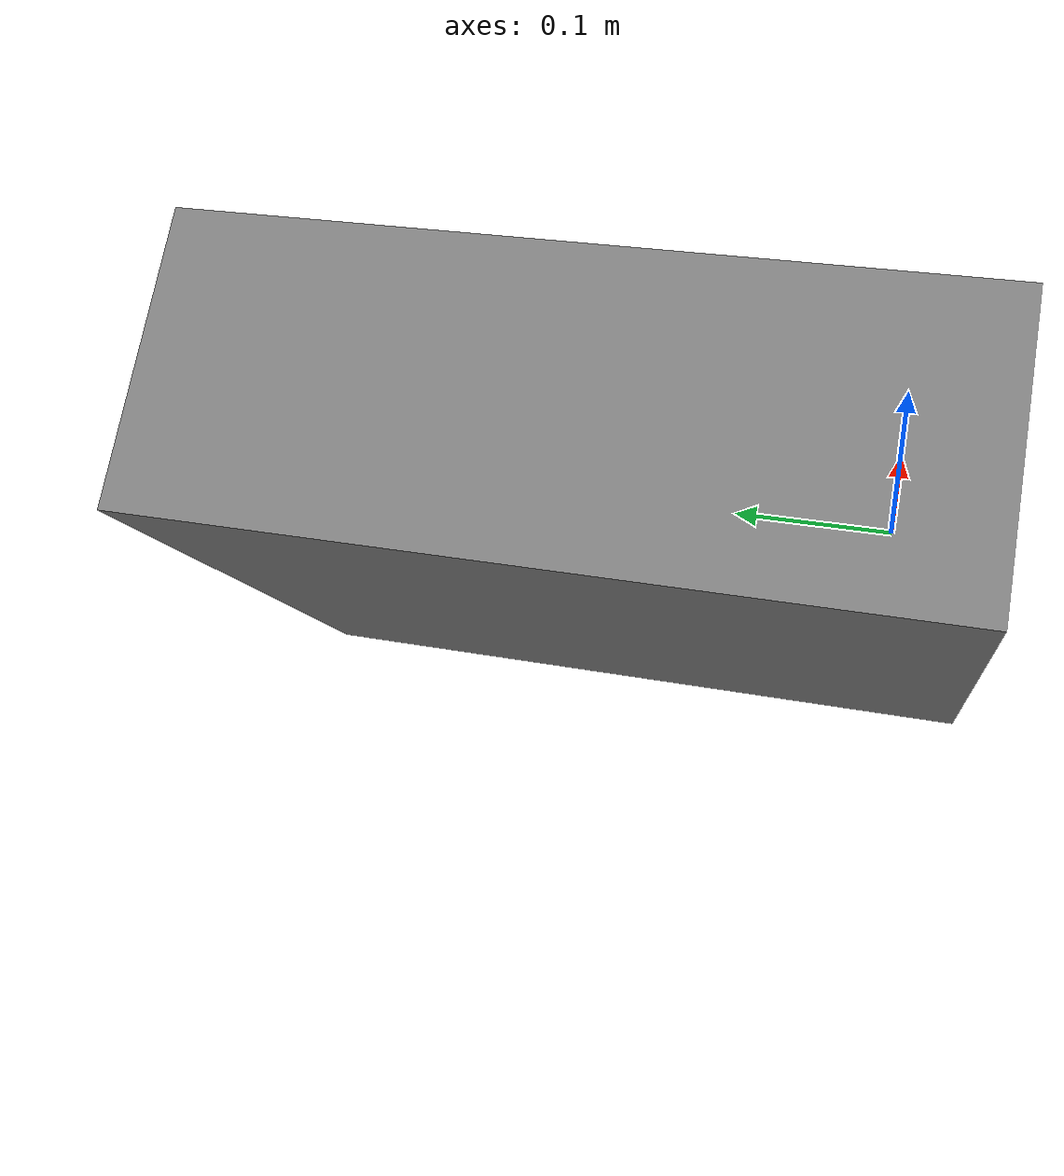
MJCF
<?xml version="1.0"?>
<mujoco model="suitcase">
  <!-- Assets -->
  <asset>
    <mesh name="suitcase_mesh" file="/home/elijah/Documents/projects/hdmi/active-adaptation/active_adaptation/assets_mjcf/objects/suitcase/suitcase.obj"/>
  </asset>

  <!-- World body -->
  <worldbody>
    <body name="suitcase_body">
      <freejoint name="suitcase_root"/>
      <inertial mass="2.0" pos="0 0 0" diaginertia="0.0334 0.02167 0.04167"/>

      <geom type="box" size="0.2 0.24 0.09" pos="0 0.18 0.0" quat="0.9211 0 0.3894 0"/>
    </body>
  </worldbody>

</mujoco>
